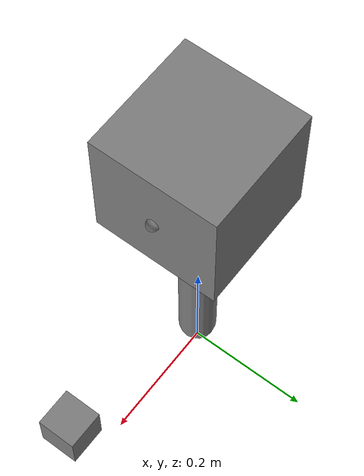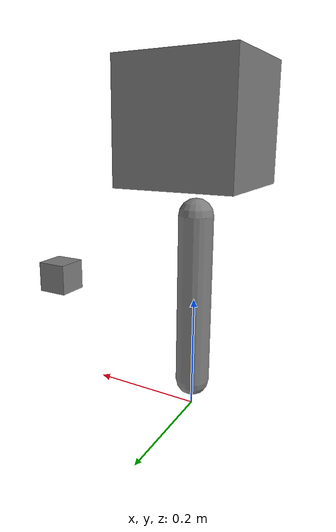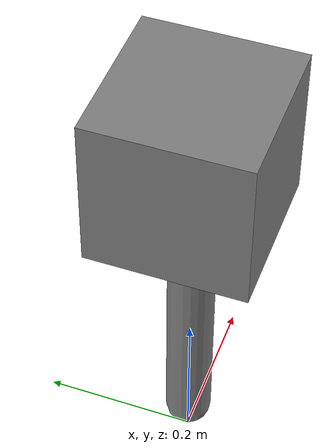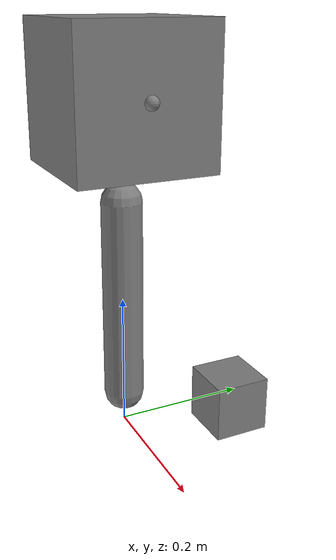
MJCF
<mujoco model="ros2_control_interface_test">
  <compiler autolimits="true"/>
  <option gravity="0 0 0" timestep="0.001"/>

  <worldbody>
    <body name="base" pos="0 0 0.5">
      <freejoint name="base_freejoint"/>
      <geom type="box" size="0.1 0.1 0.1" mass="1"/>
      <site name="base_imu_site" size="0.01"/>
      <site name="tool_site" pos="0.1 0 0" size="0.01"/>
      <site name="range_site" pos="0 0 -0.1" zaxis="0 0 -1" size="0.01"/>
    </body>

    <body name="controlled_link" pos="0 0 0.2">
      <joint name="controlled_joint" type="hinge" axis="0 0 1" range="-2 2"/>
      <geom type="capsule" size="0.03 0.15" mass="0.2"/>
    </body>

    <body name="gpio_link" pos="0.3 0 0.2">
      <joint name="gpio_joint" type="slide" axis="1 0 0" range="0 1"/>
      <geom type="box" size="0.03 0.03 0.03" mass="0.1"/>
    </body>
  </worldbody>

  <actuator>
    <position name="controlled_position" joint="controlled_joint" kp="20"/>
    <velocity name="controlled_velocity" joint="controlled_joint" kv="2"/>
    <motor name="controlled_effort" joint="controlled_joint" ctrlrange="-5 5"/>
    <motor name="gpio_output" joint="gpio_joint" ctrlrange="0 1"/>
    <motor name="gpio_bidirectional" joint="gpio_joint" ctrlrange="-1 1"/>
  </actuator>

  <sensor>
    <framequat name="base_quat" objtype="site" objname="base_imu_site"/>
    <gyro name="base_gyro" site="base_imu_site"/>
    <accelerometer name="base_accel" site="base_imu_site"/>
    <force name="tool_force" site="tool_site"/>
    <torque name="tool_torque" site="tool_site"/>
    <rangefinder name="proximity_range" site="range_site"/>
    <framepos name="tracked_position" objtype="site" objname="tool_site"/>
    <framequat name="tracked_orientation" objtype="site" objname="tool_site"/>
    <user name="tool_temperature" dim="1" needstage="pos"/>
    <user name="tool_contact" dim="3" needstage="pos"/>
    <user name="digital_inputs" dim="2" needstage="pos"/>
  </sensor>
</mujoco>
